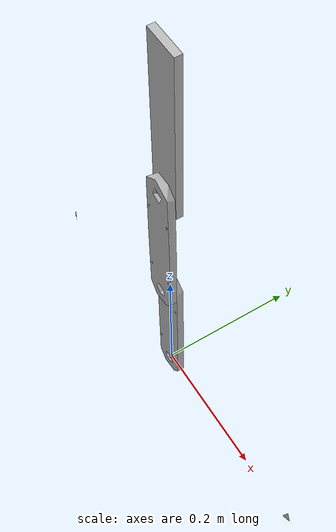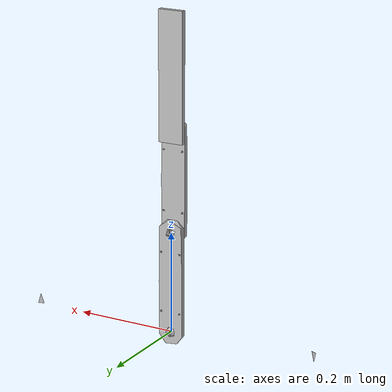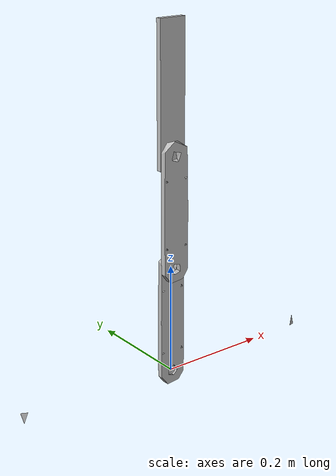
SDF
<sdf version="1.6">
	<model name="yatr">
		<link name="link0">
			<self_collide>false</self_collide>
			<pose frame="">-5.563947494092521e-09 0.0 0.0999988906728854 0.0 -0.0 0.0</pose>
			<inertial>
				<pose frame="">0.0 0.0 0.0 0 0 0</pose>
				<mass>0.8836370946540533</mass>
				<inertia>
					<ixx>0.0128359314450565</ixx>
					<ixy>-2.2311041902867146e-20</ixy>
					<ixz>2.2311041902867146e-20</ixz>
					<iyy>0.013012482239917657</iyy>
					<iyz>-7.015541185751317e-11</iyz>
					<izz>0.00019127807977205796</izz>
				</inertia>
			</inertial>
			<collision name="link0_collision">
				<geometry>
					<mesh>
						<uri>model://yatr/meshes/collisions/link0.stl</uri>
						<scale>0.001 0.001 0.001</scale>
					</mesh>
				</geometry>
			</collision>
			<visual name="link0_visual">
				<geometry>
					<mesh>
						<uri>model://yatr/meshes/visuals/link0.stl</uri>
						<scale>0.001 0.001 0.001</scale>
					</mesh>
				</geometry>
			</visual>
		</link>
		<link name="base">
			<self_collide>false</self_collide>
			<pose frame="">0.0 0.005 0.0 0.0 -0.0 0.0</pose>
			<inertial>
				<pose frame="">0.0 0.0 0.0 0 0 0</pose>
				<mass>0.049323004661358645</mass>
				<inertia>
					<ixx>4.264384748154175e-06</ixx>
					<ixy>-2.4065857640032105e-18</ixy>
					<ixz>-9.662493916096083e-17</ixz>
					<iyy>0.0022242106194684656</iyy>
					<iyz>2.578881552750545e-16</iyz>
					<izz>0.0022206655285581956</izz>
				</inertia>
			</inertial>
			<collision name="base_collision">
				<geometry>
					<mesh>
						<uri>model://yatr/meshes/collisions/base.stl</uri>
						<scale>0.001 0.001 0.001</scale>
					</mesh>
				</geometry>
			</collision>
			<visual name="base_visual">
				<geometry>
					<mesh>
						<uri>model://yatr/meshes/visuals/base.stl</uri>
						<scale>0.001 0.001 0.001</scale>
					</mesh>
				</geometry>
			</visual>
		</link>
		<link name="link1">
			<self_collide>false</self_collide>
			<pose frame="">5.546390191122689e-09 -0.009999999999999992 0.29999662680277434 0.0 -0.0 0.0</pose>
			<inertial>
				<pose frame="">0.0 0.0 0.0 0 0 0</pose>
				<mass>0.8836370946540533</mass>
				<inertia>
					<ixx>0.08361367037501313</ixx>
					<ixy>4.900996110954736e-11</ixy>
					<ixz>0.002650881477140194</ixz>
					<iyy>0.08370185746040888</iyy>
					<iyz>-9.084812706589674e-10</iyz>
					<izz>0.00027964178923746305</izz>
				</inertia>
			</inertial>
			<collision name="link1_collision">
				<geometry>
					<mesh>
						<uri>model://yatr/meshes/collisions/link1.stl</uri>
						<scale>0.001 0.001 0.001</scale>
					</mesh>
				</geometry>
			</collision>
			<visual name="link1_visual">
				<geometry>
					<mesh>
						<uri>model://yatr/meshes/visuals/link1.stl</uri>
						<scale>0.001 0.001 0.001</scale>
					</mesh>
				</geometry>
			</visual>
		</link>
		<link name="link2">
			<self_collide>false</self_collide>
			<pose frame="">-5.5639488625937765e-09 1.1993322788254998e-17 0.4999943629326631 0.0 -0.0 0.0</pose>
			<inertial>
				<pose frame="">0.0 0.0 0.0 0 0 0</pose>
				<mass>0.8836370946540533</mass>
				<inertia>
					<ixx>0.22490404911573442</ixx>
					<ixy>0.0</ixy>
					<ixz>-5.354650056688115e-18</ixz>
					<iyy>0.2250805999105956</iyy>
					<iyz>1.8964270946713667e-09</iyz>
					<izz>0.00019127807977205842</izz>
				</inertia>
			</inertial>
			<collision name="link2_collision">
				<geometry>
					<mesh>
						<uri>model://yatr/meshes/collisions/link2.stl</uri>
						<scale>0.001 0.001 0.001</scale>
					</mesh>
				</geometry>
			</collision>
			<visual name="link2_visual">
				<geometry>
					<mesh>
						<uri>model://yatr/meshes/visuals/link2.stl</uri>
						<scale>0.001 0.001 0.001</scale>
					</mesh>
				</geometry>
			</visual>
		</link>
		<joint name="joint0" type="revolute">
			<parent>base</parent>
			<child>link0</child>
			<pose frame="">5.563947494092521e-09 -0.005 -0.0999988906728854 0 0 0</pose>
			<axis>
				<xyz>0.0 -1.0 0.0</xyz>
				<limit>
					<lower>-3.141592653589793</lower>
					<upper>3.14159265359</upper>
				</limit>
				<use_parent_model_frame>0</use_parent_model_frame>
			</axis>
		</joint>
		<joint name="joint1" type="revolute">
			<parent>link0</parent>
			<child>link1</child>
			<pose frame="">-5.563946838776726e-09 0.004999999999999993 -0.09999889067288535 0 0 0</pose>
			<axis>
				<xyz>0.0 -0.9999999999999996 0.0</xyz>
				<limit>
					<lower>-3.14159265359</lower>
					<upper>3.141592653589793</upper>
				</limit>
				<use_parent_model_frame>0</use_parent_model_frame>
			</axis>
		</joint>
		<joint name="joint2" type="revolute">
			<parent>link1</parent>
			<child>link2</child>
			<pose frame="">5.5639475612636e-09 -0.005000000000000001 -0.09999889067288542 0 0 0</pose>
			<axis>
				<xyz>0.0 -0.9999999999999984 0.0</xyz>
				<limit>
					<lower>-3.14159265359</lower>
					<upper>3.141592653589793</upper>
				</limit>
				<use_parent_model_frame>0</use_parent_model_frame>
			</axis>
		</joint>
		<plugin filename="libmusc_plugin.so" name="musc_plugin">
		</plugin>
	</model>
</sdf>
